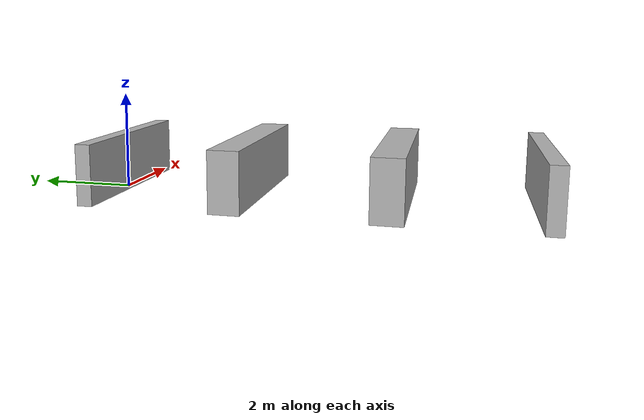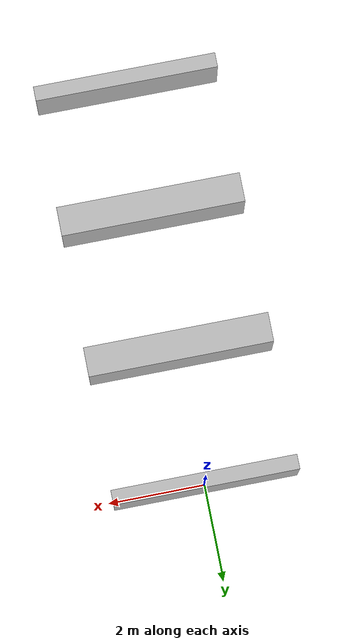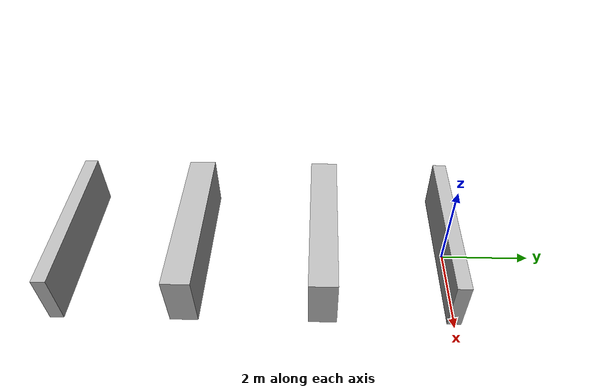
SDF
<?xml version="1.0" ?>
<sdf version="1.6">
  <model name="tue.library/theses">
    <link name="1">
      <collision name="1">
        <geometry>
          <box>
            <size>3.82 0.305 1.2</size>
          </box>
        </geometry>
        <name>1</name>
      </collision>
      <visual name="1">
        <geometry>
          <box>
            <size>3.82 0.305 1.2</size>
          </box>
        </geometry>
        <name>1</name>
      </visual>
      <pose>0 0 0.6 0 0 0</pose>
      <name>1</name>
    </link>
    <link name="2">
      <collision name="2">
        <geometry>
          <box>
            <size>3.82 0.61 1.2</size>
          </box>
        </geometry>
        <name>2</name>
      </collision>
      <visual name="2">
        <geometry>
          <box>
            <size>3.82 0.61 1.2</size>
          </box>
        </geometry>
        <name>2</name>
      </visual>
      <pose>0 -2.8 0.6 0 0 0</pose>
      <name>2</name>
    </link>
    <link name="3">
      <collision name="3">
        <geometry>
          <box>
            <size>3.82 0.61 1.2</size>
          </box>
        </geometry>
        <name>3</name>
      </collision>
      <visual name="3">
        <geometry>
          <box>
            <size>3.82 0.61 1.2</size>
          </box>
        </geometry>
        <name>3</name>
      </visual>
      <pose>0 -5.76 0.6 0 0 0</pose>
      <name>3</name>
    </link>
    <link name="4">
      <collision name="4">
        <geometry>
          <box>
            <size>3.82 0.305 1.2</size>
          </box>
        </geometry>
        <name>4</name>
      </collision>
      <visual name="4">
        <geometry>
          <box>
            <size>3.82 0.305 1.2</size>
          </box>
        </geometry>
        <name>4</name>
      </visual>
      <pose>0 -8.5 0.6 0 0 0</pose>
      <name>4</name>
    </link>
    <static>true</static>
    <name>tue.library/theses</name>
  </model>
</sdf>
